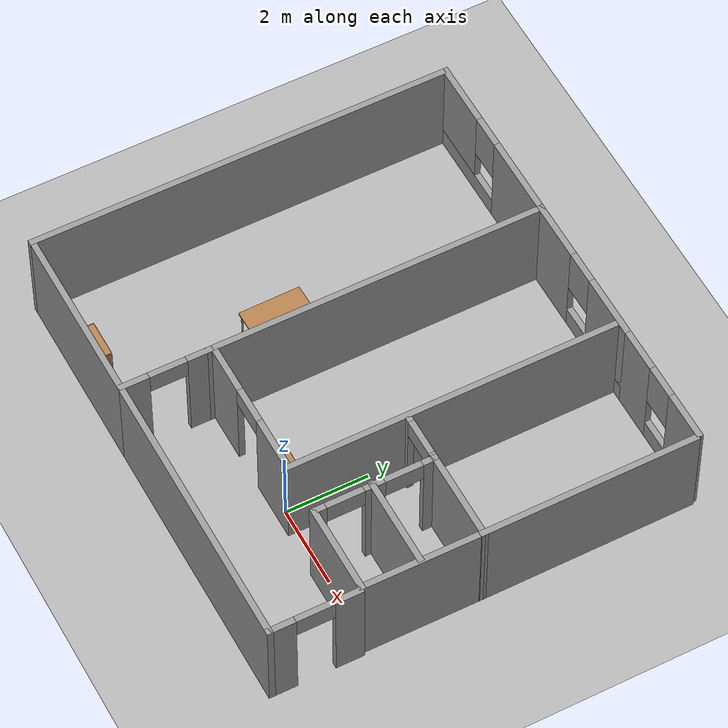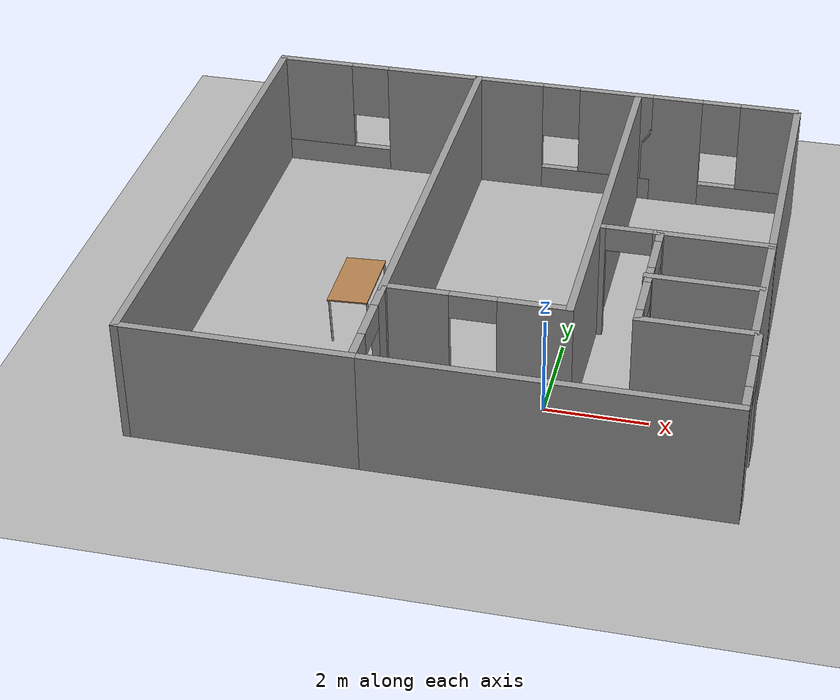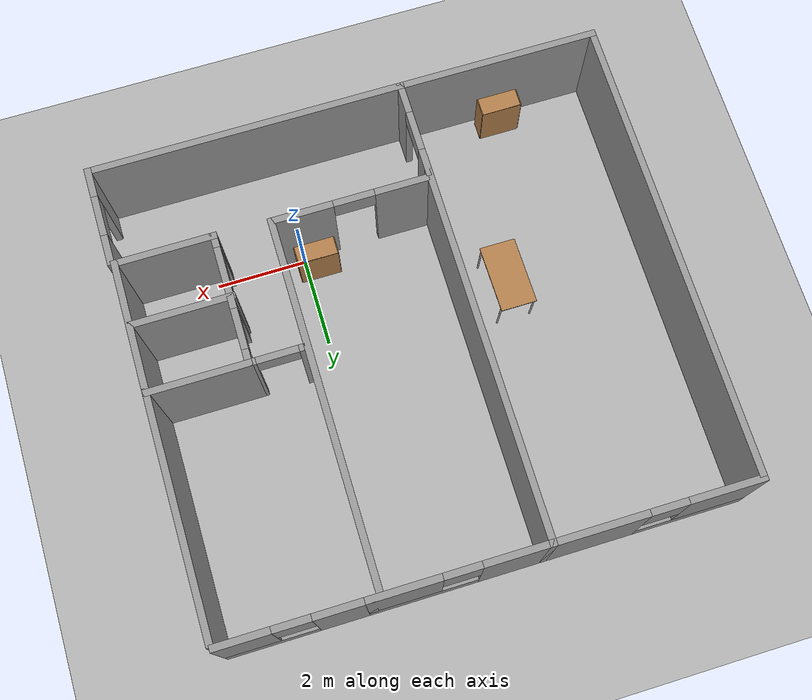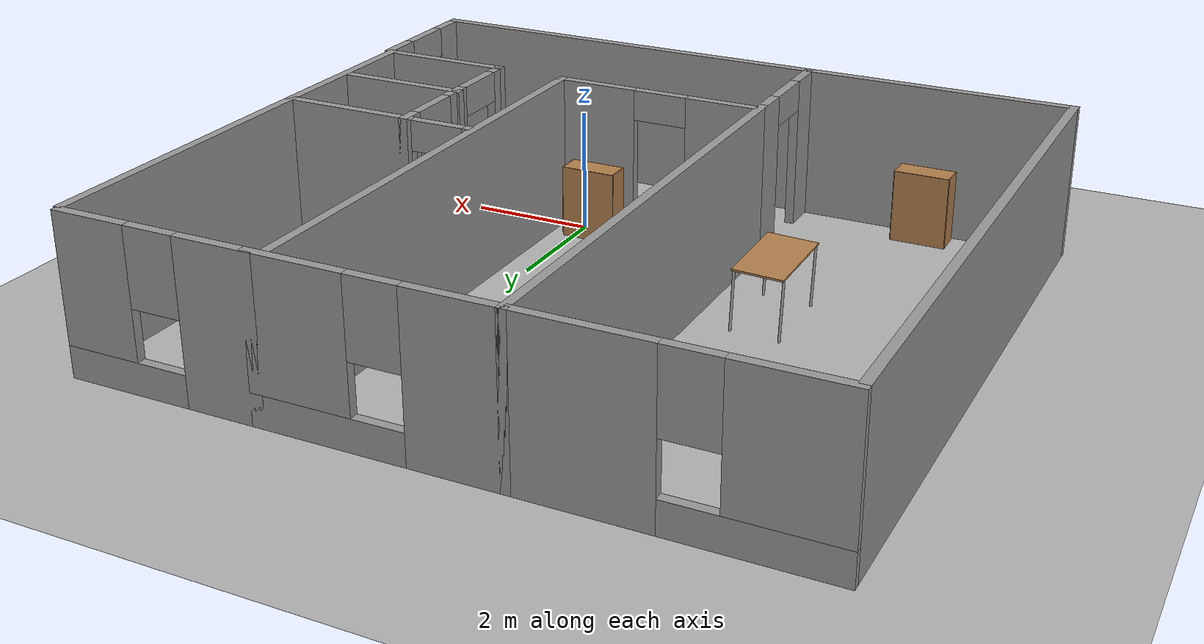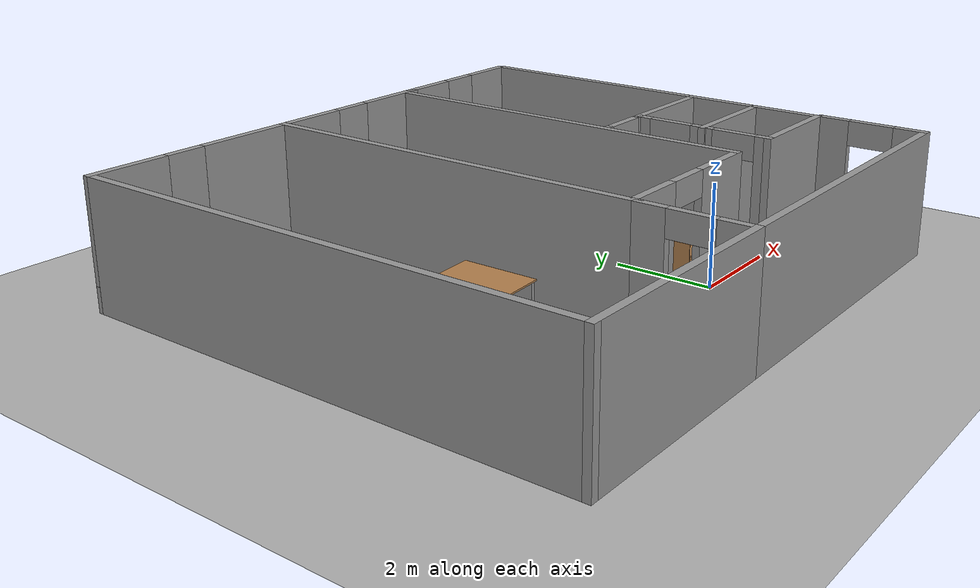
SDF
<sdf version="1.9">
 <world name="default">
  <gravity>0 0 -9.8</gravity>
  <magnetic_field>6e-06 2.3e-05 -4.2e-05</magnetic_field>
  <atmosphere type="adiabatic"/>
  <physics type="ode">
   <max_step_size>0.001</max_step_size>
   <real_time_factor>1</real_time_factor>
   <real_time_update_rate>1000</real_time_update_rate>
  </physics>
  <scene><ambient>0.4 0.4 0.4 1</ambient><background>0.7 0.7 0.7 1</background><shadows>true</shadows></scene>
  <model name="flatC">
   <pose>-1.73 2.75 0 0 -0 0</pose>
   <link name="Wall_0">
    <pose>-1.25 -4.05 0 0 -0 1.5708</pose>
    <visual name="Wall_0_Visual_0">
     <pose>-0.761983 0 1.25 0 -0 0</pose>
     <geometry><box><size>0.726033 0.15 2.5</size></box></geometry>
     <material>
      <script><uri>file://media/materials/scripts/gazebo.material</uri><name>Gazebo/Grey</name></script>
      <ambient>1 1 1 1</ambient>
     </material>
     <meta><layer>0</layer></meta>
    </visual>
    <collision name="Wall_0_Collision_0">
     <geometry><box><size>0.726033 0.15 2.5</size></box></geometry>
     <pose>-0.761983 0 1.25 0 -0 0</pose>
    </collision>
    <visual name="Wall_0_Visual_1">
     <pose>0.813017 0 1.25 0 -0 0</pose>
     <geometry><box><size>0.623967 0.15 2.5</size></box></geometry>
     <material>
      <script><uri>file://media/materials/scripts/gazebo.material</uri><name>Gazebo/Grey</name></script>
      <ambient>1 1 1 1</ambient>
     </material>
     <meta><layer>0</layer></meta>
    </visual>
    <collision name="Wall_0_Collision_1">
     <geometry><box><size>0.623967 0.15 2.5</size></box></geometry>
     <pose>0.813017 0 1.25 0 -0 0</pose>
    </collision>
    <visual name="Wall_0_Visual_2">
     <pose>0.051033 0 2.25 0 -0 0</pose>
     <geometry><box><size>0.9 0.15 0.5</size></box></geometry>
     <material>
      <script><uri>file://media/materials/scripts/gazebo.material</uri><name>Gazebo/Grey</name></script>
      <ambient>1 1 1 1</ambient>
     </material>
     <meta><layer>0</layer></meta>
    </visual>
    <collision name="Wall_0_Collision_2">
     <geometry><box><size>0.9 0.15 0.5</size></box></geometry>
     <pose>0.051033 0 2.25 0 -0 0</pose>
    </collision>
    <inertial>
     <mass>1</mass>
     <inertia><ixx>1</ixx><ixy>0</ixy><ixz>0</ixz><iyy>1</iyy><iyz>0</iyz><izz>1</izz></inertia>
    </inertial>
   </link>
   <link name="Wall_11">
    <collision name="Wall_11_Collision">
     <geometry><box><size>2.25 0.15 2.5</size></box></geometry>
     <pose>0 0 1.25 0 -0 0</pose>
    </collision>
    <visual name="Wall_11_Visual">
     <pose>0 0 1.25 0 -0 0</pose>
     <geometry><box><size>2.25 0.15 2.5</size></box></geometry>
     <material>
      <script><uri>file://media/materials/scripts/gazebo.material</uri><name>Gazebo/Grey</name></script>
      <ambient>1 1 1 1</ambient>
     </material>
     <meta><layer>0</layer></meta>
    </visual>
    <pose>4.45076 -1.55036 0 0 -0 0</pose>
    <inertial>
     <mass>1</mass>
     <inertia><ixx>1</ixx><ixy>0</ixy><ixz>0</ixz><iyy>1</iyy><iyz>0</iyz><izz>1</izz></inertia>
    </inertial>
   </link>
   <link name="Wall_14">
    <collision name="Wall_14_Collision">
     <geometry><box><size>8 0.15 2.5</size></box></geometry>
     <pose>0 0 1.25 0 -0 0</pose>
    </collision>
    <visual name="Wall_14_Visual">
     <pose>0 0 1.25 0 -0 0</pose>
     <geometry><box><size>8 0.15 2.5</size></box></geometry>
     <material>
      <script><uri>file://media/materials/scripts/gazebo.material</uri><name>Gazebo/Grey</name></script>
      <ambient>1 1 1 1</ambient>
     </material>
     <meta><layer>0</layer></meta>
    </visual>
    <pose>2.21143 1.02791 0 0 -0 1.5708</pose>
    <inertial>
     <mass>1</mass>
     <inertia><ixx>1</ixx><ixy>0</ixy><ixz>0</ixz><iyy>1</iyy><iyz>0</iyz><izz>1</izz></inertia>
    </inertial>
   </link>
   <link name="Wall_16">
    <collision name="Wall_16_Collision">
     <geometry><box><size>8.25 0.15 2.5</size></box></geometry>
     <pose>0 0 1.25 0 -0 0</pose>
    </collision>
    <visual name="Wall_16_Visual">
     <pose>0 0 1.25 0 -0 0</pose>
     <geometry><box><size>8.25 0.15 2.5</size></box></geometry>
     <material>
      <script><uri>file://media/materials/scripts/gazebo.material</uri><name>Gazebo/Grey</name></script>
      <ambient>1 1 1 1</ambient>
     </material>
     <meta><layer>0</layer></meta>
    </visual>
    <pose>-1.25 1.05 0 0 -0 1.5708</pose>
    <inertial>
     <mass>1</mass>
     <inertia><ixx>1</ixx><ixy>0</ixy><ixz>0</ixz><iyy>1</iyy><iyz>0</iyz><izz>1</izz></inertia>
    </inertial>
   </link>
   <link name="Wall_18">
    <pose>0.602471 5.1 0 0 -0 0</pose>
    <visual name="Wall_18_Visual_0">
     <pose>-1.18129 0 1.25 0 -0 0</pose>
     <geometry><box><size>1.49236 0.15 2.5</size></box></geometry>
     <material>
      <script><uri>file://media/materials/scripts/gazebo.material</uri><name>Gazebo/Grey</name></script>
      <ambient>1 1 1 1</ambient>
     </material>
     <meta><layer>0</layer></meta>
    </visual>
    <collision name="Wall_18_Collision_0">
     <geometry><box><size>1.49236 0.15 2.5</size></box></geometry>
     <pose>-1.18129 0 1.25 0 -0 0</pose>
    </collision>
    <visual name="Wall_18_Visual_1">
     <pose>0.746183 0 0.25 0 -0 0</pose>
     <geometry><box><size>2.36258 0.15 0.5</size></box></geometry>
     <material>
      <script><uri>file://media/materials/scripts/gazebo.material</uri><name>Gazebo/Grey</name></script>
      <ambient>1 1 1 1</ambient>
     </material>
     <meta><layer>0</layer></meta>
    </visual>
    <collision name="Wall_18_Collision_1">
     <geometry><box><size>2.36258 0.15 0.5</size></box></geometry>
     <pose>0.746183 0 0.25 0 -0 0</pose>
    </collision>
    <visual name="Wall_18_Visual_2">
     <pose>1.14618 0 1.5 0 -0 0</pose>
     <geometry><box><size>1.56258 0.15 2</size></box></geometry>
     <material>
      <script><uri>file://media/materials/scripts/gazebo.material</uri><name>Gazebo/Grey</name></script>
      <ambient>1 1 1 1</ambient>
     </material>
     <meta><layer>0</layer></meta>
    </visual>
    <collision name="Wall_18_Collision_2">
     <geometry><box><size>1.56258 0.15 2</size></box></geometry>
     <pose>1.14618 0 1.5 0 -0 0</pose>
    </collision>
    <visual name="Wall_18_Visual_3">
     <pose>-0.035105 0 1.9 0 -0 0</pose>
     <geometry><box><size>0.8 0.15 1.2</size></box></geometry>
     <material>
      <script><uri>file://media/materials/scripts/gazebo.material</uri><name>Gazebo/Grey</name></script>
      <ambient>1 1 1 1</ambient>
     </material>
     <meta><layer>0</layer></meta>
    </visual>
    <collision name="Wall_18_Collision_3">
     <geometry><box><size>0.8 0.15 1.2</size></box></geometry>
     <pose>-0.035105 0 1.9 0 -0 0</pose>
    </collision>
    <inertial>
     <mass>1</mass>
     <inertia><ixx>1</ixx><ixy>0</ixy><ixz>0</ixz><iyy>1</iyy><iyz>0</iyz><izz>1</izz></inertia>
    </inertial>
   </link>
   <link name="Wall_19">
    <pose>3.95247 5.1 0 0 -0 0</pose>
    <visual name="Wall_19_Visual_0">
     <pose>-0.999771 0 1.25 0 -0 0</pose>
     <geometry><box><size>1.25046 0.15 2.5</size></box></geometry>
     <material>
      <script><uri>file://media/materials/scripts/gazebo.material</uri><name>Gazebo/Grey</name></script>
      <ambient>1 1 1 1</ambient>
     </material>
     <meta><layer>0</layer></meta>
    </visual>
    <collision name="Wall_19_Collision_0">
     <geometry><box><size>1.25046 0.15 2.5</size></box></geometry>
     <pose>-0.999771 0 1.25 0 -0 0</pose>
    </collision>
    <visual name="Wall_19_Visual_1">
     <pose>0.625229 0 0.25 0 -0 0</pose>
     <geometry><box><size>1.99954 0.15 0.5</size></box></geometry>
     <material>
      <script><uri>file://media/materials/scripts/gazebo.material</uri><name>Gazebo/Grey</name></script>
      <ambient>1 1 1 1</ambient>
     </material>
     <meta><layer>0</layer></meta>
    </visual>
    <collision name="Wall_19_Collision_1">
     <geometry><box><size>1.99954 0.15 0.5</size></box></geometry>
     <pose>0.625229 0 0.25 0 -0 0</pose>
    </collision>
    <visual name="Wall_19_Visual_2">
     <pose>1.02523 0 1.5 0 -0 0</pose>
     <geometry><box><size>1.19954 0.15 2</size></box></geometry>
     <material>
      <script><uri>file://media/materials/scripts/gazebo.material</uri><name>Gazebo/Grey</name></script>
      <ambient>1 1 1 1</ambient>
     </material>
     <meta><layer>0</layer></meta>
    </visual>
    <collision name="Wall_19_Collision_2">
     <geometry><box><size>1.19954 0.15 2</size></box></geometry>
     <pose>1.02523 0 1.5 0 -0 0</pose>
    </collision>
    <visual name="Wall_19_Visual_3">
     <pose>0.025457 0 1.9 0 -0 0</pose>
     <geometry><box><size>0.8 0.15 1.2</size></box></geometry>
     <material>
      <script><uri>file://media/materials/scripts/gazebo.material</uri><name>Gazebo/Grey</name></script>
      <ambient>1 1 1 1</ambient>
     </material>
     <meta><layer>0</layer></meta>
    </visual>
    <collision name="Wall_19_Collision_3">
     <geometry><box><size>0.8 0.15 1.2</size></box></geometry>
     <pose>0.025457 0 1.9 0 -0 0</pose>
    </collision>
    <inertial>
     <mass>1</mass>
     <inertia><ixx>1</ixx><ixy>0</ixy><ixz>0</ixz><iyy>1</iyy><iyz>0</iyz><izz>1</izz></inertia>
    </inertial>
   </link>
   <link name="Wall_2">
    <pose>5.6 -4.05 0 0 0 -1.5708</pose>
    <visual name="Wall_2_Visual_0">
     <pose>-0.786782 0 1.25 0 -0 0</pose>
     <geometry><box><size>0.676437 0.15 2.5</size></box></geometry>
     <material>
      <script><uri>file://media/materials/scripts/gazebo.material</uri><name>Gazebo/Grey</name></script>
      <ambient>1 1 1 1</ambient>
     </material>
     <meta><layer>0</layer></meta>
    </visual>
    <collision name="Wall_2_Collision_0">
     <geometry><box><size>0.676437 0.15 2.5</size></box></geometry>
     <pose>-0.786782 0 1.25 0 -0 0</pose>
    </collision>
    <visual name="Wall_2_Visual_1">
     <pose>0.788218 0 1.25 0 -0 0</pose>
     <geometry><box><size>0.673563 0.15 2.5</size></box></geometry>
     <material>
      <script><uri>file://media/materials/scripts/gazebo.material</uri><name>Gazebo/Grey</name></script>
      <ambient>1 1 1 1</ambient>
     </material>
     <meta><layer>0</layer></meta>
    </visual>
    <collision name="Wall_2_Collision_1">
     <geometry><box><size>0.673563 0.15 2.5</size></box></geometry>
     <pose>0.788218 0 1.25 0 -0 0</pose>
    </collision>
    <visual name="Wall_2_Visual_2">
     <pose>0.001437 0 2.25 0 -0 0</pose>
     <geometry><box><size>0.9 0.15 0.5</size></box></geometry>
     <material>
      <script><uri>file://media/materials/scripts/gazebo.material</uri><name>Gazebo/Grey</name></script>
      <ambient>1 1 1 1</ambient>
     </material>
     <meta><layer>0</layer></meta>
    </visual>
    <collision name="Wall_2_Collision_2">
     <geometry><box><size>0.9 0.15 0.5</size></box></geometry>
     <pose>0.001437 0 2.25 0 -0 0</pose>
    </collision>
    <inertial>
     <mass>1</mass>
     <inertia><ixx>1</ixx><ixy>0</ixy><ixz>0</ixz><iyy>1</iyy><iyz>0</iyz><izz>1</izz></inertia>
    </inertial>
   </link>
   <link name="Wall_21">
    <collision name="Wall_21_Collision">
     <geometry><box><size>5.25 0.15 2.5</size></box></geometry>
     <pose>0 0 1.25 0 -0 0</pose>
    </collision>
    <visual name="Wall_21_Visual">
     <pose>0 0 1.25 0 -0 0</pose>
     <geometry><box><size>5.25 0.15 2.5</size></box></geometry>
     <material>
      <script><uri>file://media/materials/scripts/gazebo.material</uri><name>Gazebo/Grey</name></script>
      <ambient>1 1 1 1</ambient>
     </material>
     <meta><layer>0</layer></meta>
    </visual>
    <pose>5.55323 2.45044 0 0 -0 1.5708</pose>
    <inertial>
     <mass>1</mass>
     <inertia><ixx>1</ixx><ixy>0</ixy><ixz>0</ixz><iyy>1</iyy><iyz>0</iyz><izz>1</izz></inertia>
    </inertial>
   </link>
   <link name="Wall_23">
    <pose>2.88574 -0.082073 0 0 -0 3.14159</pose>
    <visual name="Wall_23_Visual_0">
     <pose>-0.515169 0 1.25 0 -0 0</pose>
     <geometry><box><size>0.219662 0.15 2.5</size></box></geometry>
     <material>
      <script><uri>file://media/materials/scripts/gazebo.material</uri><name>Gazebo/Grey</name></script>
      <ambient>1 1 1 1</ambient>
     </material>
     <meta><layer>0</layer></meta>
    </visual>
    <collision name="Wall_23_Collision_0">
     <geometry><box><size>0.219662 0.15 2.5</size></box></geometry>
     <pose>-0.515169 0 1.25 0 -0 0</pose>
    </collision>
    <visual name="Wall_23_Visual_1">
     <pose>0.559831 0 1.25 0 -0 0</pose>
     <geometry><box><size>0.130338 0.15 2.5</size></box></geometry>
     <material>
      <script><uri>file://media/materials/scripts/gazebo.material</uri><name>Gazebo/Grey</name></script>
      <ambient>1 1 1 1</ambient>
     </material>
     <meta><layer>0</layer></meta>
    </visual>
    <collision name="Wall_23_Collision_1">
     <geometry><box><size>0.130338 0.15 2.5</size></box></geometry>
     <pose>0.559831 0 1.25 0 -0 0</pose>
    </collision>
    <visual name="Wall_23_Visual_2">
     <pose>0.044662 0 2.25 0 -0 0</pose>
     <geometry><box><size>0.9 0.15 0.5</size></box></geometry>
     <material>
      <script><uri>file://media/materials/scripts/gazebo.material</uri><name>Gazebo/Grey</name></script>
      <ambient>1 1 1 1</ambient>
     </material>
     <meta><layer>0</layer></meta>
    </visual>
    <collision name="Wall_23_Collision_2">
     <geometry><box><size>0.9 0.15 0.5</size></box></geometry>
     <pose>0.044662 0 2.25 0 -0 0</pose>
    </collision>
    <inertial>
     <mass>1</mass>
     <inertia><ixx>1</ixx><ixy>0</ixy><ixz>0</ixz><iyy>1</iyy><iyz>0</iyz><izz>1</izz></inertia>
    </inertial>
   </link>
   <link name="Wall_25">
    <collision name="Wall_25_Collision">
     <geometry><box><size>4.5 0.15 2.5</size></box></geometry>
     <pose>0 0 1.25 0 -0 0</pose>
    </collision>
    <visual name="Wall_25_Visual">
     <pose>0 0 1.25 0 -0 0</pose>
     <geometry><box><size>4.5 0.15 2.5</size></box></geometry>
     <material>
      <script><uri>file://media/materials/scripts/gazebo.material</uri><name>Gazebo/Grey</name></script>
      <ambient>1 1 1 1</ambient>
     </material>
     <meta><layer>0</layer></meta>
    </visual>
    <pose>-3.425 -5.1 0 0 -0 3.14159</pose>
    <inertial>
     <mass>1</mass>
     <inertia><ixx>1</ixx><ixy>0</ixy><ixz>0</ixz><iyy>1</iyy><iyz>0</iyz><izz>1</izz></inertia>
    </inertial>
   </link>
   <link name="Wall_26">
    <collision name="Wall_26_Collision">
     <geometry><box><size>10.25 0.15 2.5</size></box></geometry>
     <pose>0 0 1.25 0 -0 0</pose>
    </collision>
    <visual name="Wall_26_Visual">
     <pose>0 0 1.25 0 -0 0</pose>
     <geometry><box><size>10.25 0.15 2.5</size></box></geometry>
     <material>
      <script><uri>file://media/materials/scripts/gazebo.material</uri><name>Gazebo/Grey</name></script>
      <ambient>1 1 1 1</ambient>
     </material>
     <meta><layer>0</layer></meta>
    </visual>
    <pose>-5.6 -0.05 0 0 -0 1.5708</pose>
    <inertial>
     <mass>1</mass>
     <inertia><ixx>1</ixx><ixy>0</ixy><ixz>0</ixz><iyy>1</iyy><iyz>0</iyz><izz>1</izz></inertia>
    </inertial>
   </link>
   <link name="Wall_28">
    <pose>-3.425 5.1 0 0 -0 3.14159</pose>
    <visual name="Wall_28_Visual_0">
     <pose>-1.21363 0 1.25 0 -0 0</pose>
     <geometry><box><size>2.07274 0.15 2.5</size></box></geometry>
     <material>
      <script><uri>file://media/materials/scripts/gazebo.material</uri><name>Gazebo/Grey</name></script>
      <ambient>1 1 1 1</ambient>
     </material>
     <meta><layer>0</layer></meta>
    </visual>
    <collision name="Wall_28_Collision_0">
     <geometry><box><size>2.07274 0.15 2.5</size></box></geometry>
     <pose>-1.21363 0 1.25 0 -0 0</pose>
    </collision>
    <visual name="Wall_28_Visual_1">
     <pose>1.03637 0 0.25 0 -0 0</pose>
     <geometry><box><size>2.42726 0.15 0.5</size></box></geometry>
     <material>
      <script><uri>file://media/materials/scripts/gazebo.material</uri><name>Gazebo/Grey</name></script>
      <ambient>1 1 1 1</ambient>
     </material>
     <meta><layer>0</layer></meta>
    </visual>
    <collision name="Wall_28_Collision_1">
     <geometry><box><size>2.42726 0.15 0.5</size></box></geometry>
     <pose>1.03637 0 0.25 0 -0 0</pose>
    </collision>
    <visual name="Wall_28_Visual_2">
     <pose>1.43637 0 1.5 0 -0 0</pose>
     <geometry><box><size>1.62726 0.15 2</size></box></geometry>
     <material>
      <script><uri>file://media/materials/scripts/gazebo.material</uri><name>Gazebo/Grey</name></script>
      <ambient>1 1 1 1</ambient>
     </material>
     <meta><layer>0</layer></meta>
    </visual>
    <collision name="Wall_28_Collision_2">
     <geometry><box><size>1.62726 0.15 2</size></box></geometry>
     <pose>1.43637 0 1.5 0 -0 0</pose>
    </collision>
    <visual name="Wall_28_Visual_3">
     <pose>0.22274 0 1.9 0 -0 0</pose>
     <geometry><box><size>0.8 0.15 1.2</size></box></geometry>
     <material>
      <script><uri>file://media/materials/scripts/gazebo.material</uri><name>Gazebo/Grey</name></script>
      <ambient>1 1 1 1</ambient>
     </material>
     <meta><layer>0</layer></meta>
    </visual>
    <collision name="Wall_28_Collision_3">
     <geometry><box><size>0.8 0.15 1.2</size></box></geometry>
     <pose>0.22274 0 1.9 0 -0 0</pose>
    </collision>
    <inertial>
     <mass>1</mass>
     <inertia><ixx>1</ixx><ixy>0</ixy><ixz>0</ixz><iyy>1</iyy><iyz>0</iyz><izz>1</izz></inertia>
    </inertial>
   </link>
   <link name="Wall_3">
    <collision name="Wall_3_Collision">
     <geometry><box><size>7 0.15 2.5</size></box></geometry>
     <pose>0 0 1.25 0 -0 0</pose>
    </collision>
    <visual name="Wall_3_Visual">
     <pose>0 0 1.25 0 -0 0</pose>
     <geometry><box><size>7 0.15 2.5</size></box></geometry>
     <material>
      <script><uri>file://media/materials/scripts/gazebo.material</uri><name>Gazebo/Grey</name></script>
      <ambient>1 1 1 1</ambient>
     </material>
     <meta><layer>0</layer></meta>
    </visual>
    <pose>2.175 -5.1 0 0 -0 3.14159</pose>
    <inertial>
     <mass>1</mass>
     <inertia><ixx>1</ixx><ixy>0</ixy><ixz>0</ixz><iyy>1</iyy><iyz>0</iyz><izz>1</izz></inertia>
    </inertial>
   </link>
   <link name="Wall_30">
    <pose>0.536431 -2.89709 0 0 -0 3.14159</pose>
    <visual name="Wall_30_Visual_0">
     <pose>-1.04551 0 1.25 0 -0 0</pose>
     <geometry><box><size>1.40899 0.15 2.5</size></box></geometry>
     <material>
      <script><uri>file://media/materials/scripts/gazebo.material</uri><name>Gazebo/Grey</name></script>
      <ambient>1 1 1 1</ambient>
     </material>
     <meta><layer>0</layer></meta>
    </visual>
    <collision name="Wall_30_Collision_0">
     <geometry><box><size>1.40899 0.15 2.5</size></box></geometry>
     <pose>-1.04551 0 1.25 0 -0 0</pose>
    </collision>
    <visual name="Wall_30_Visual_1">
     <pose>1.15449 0 1.25 0 -0 0</pose>
     <geometry><box><size>1.19101 0.15 2.5</size></box></geometry>
     <material>
      <script><uri>file://media/materials/scripts/gazebo.material</uri><name>Gazebo/Grey</name></script>
      <ambient>1 1 1 1</ambient>
     </material>
     <meta><layer>0</layer></meta>
    </visual>
    <collision name="Wall_30_Collision_1">
     <geometry><box><size>1.19101 0.15 2.5</size></box></geometry>
     <pose>1.15449 0 1.25 0 -0 0</pose>
    </collision>
    <visual name="Wall_30_Visual_2">
     <pose>0.108986 0 2.25 0 -0 0</pose>
     <geometry><box><size>0.9 0.15 0.5</size></box></geometry>
     <material>
      <script><uri>file://media/materials/scripts/gazebo.material</uri><name>Gazebo/Grey</name></script>
      <ambient>1 1 1 1</ambient>
     </material>
     <meta><layer>0</layer></meta>
    </visual>
    <collision name="Wall_30_Collision_2">
     <geometry><box><size>0.9 0.15 0.5</size></box></geometry>
     <pose>0.108986 0 2.25 0 -0 0</pose>
    </collision>
    <inertial>
     <mass>1</mass>
     <inertia><ixx>1</ixx><ixy>0</ixy><ixz>0</ixz><iyy>1</iyy><iyz>0</iyz><izz>1</izz></inertia>
    </inertial>
   </link>
   <link name="Wall_32">
    <collision name="Wall_32_Collision">
     <geometry><box><size>2.25 0.15 2.5</size></box></geometry>
     <pose>0 0 1.25 0 -0 0</pose>
    </collision>
    <visual name="Wall_32_Visual">
     <pose>0 0 1.25 0 -0 0</pose>
     <geometry><box><size>2.25 0.15 2.5</size></box></geometry>
     <material>
      <script><uri>file://media/materials/scripts/gazebo.material</uri><name>Gazebo/Grey</name></script>
      <ambient>1 1 1 1</ambient>
     </material>
     <meta><layer>0</layer></meta>
    </visual>
    <pose>4.48574 -2.93207 0 0 -0 0</pose>
    <inertial>
     <mass>1</mass>
     <inertia><ixx>1</ixx><ixy>0</ixy><ixz>0</ixz><iyy>1</iyy><iyz>0</iyz><izz>1</izz></inertia>
    </inertial>
   </link>
   <link name="Wall_5">
    <pose>3.43574 -1.50707 0 0 -0 1.5708</pose>
    <visual name="Wall_5_Visual_0">
     <pose>-1.32895 0 1.25 0 -0 0</pose>
     <geometry><box><size>0.342093 0.15 2.5</size></box></geometry>
     <material>
      <script><uri>file://media/materials/scripts/gazebo.material</uri><name>Gazebo/Grey</name></script>
      <ambient>1 1 1 1</ambient>
     </material>
     <meta><layer>0</layer></meta>
    </visual>
    <collision name="Wall_5_Collision_0">
     <geometry><box><size>0.342093 0.15 2.5</size></box></geometry>
     <pose>-1.32895 0 1.25 0 -0 0</pose>
    </collision>
    <visual name="Wall_5_Visual_1">
     <pose>-0.01705 0 1.25 0 -0 0</pose>
     <geometry><box><size>0.481715 0.15 2.5</size></box></geometry>
     <material>
      <script><uri>file://media/materials/scripts/gazebo.material</uri><name>Gazebo/Grey</name></script>
      <ambient>1 1 1 1</ambient>
     </material>
     <meta><layer>0</layer></meta>
    </visual>
    <collision name="Wall_5_Collision_1">
     <geometry><box><size>0.481715 0.15 2.5</size></box></geometry>
     <pose>-0.01705 0 1.25 0 -0 0</pose>
    </collision>
    <visual name="Wall_5_Visual_2">
     <pose>1.3119 0 1.25 0 -0 0</pose>
     <geometry><box><size>0.376192 0.15 2.5</size></box></geometry>
     <material>
      <script><uri>file://media/materials/scripts/gazebo.material</uri><name>Gazebo/Grey</name></script>
      <ambient>1 1 1 1</ambient>
     </material>
     <meta><layer>0</layer></meta>
    </visual>
    <collision name="Wall_5_Collision_2">
     <geometry><box><size>0.376192 0.15 2.5</size></box></geometry>
     <pose>1.3119 0 1.25 0 -0 0</pose>
    </collision>
    <visual name="Wall_5_Visual_3">
     <pose>-0.707907 0 2.25 0 -0 0</pose>
     <geometry><box><size>0.9 0.15 0.5</size></box></geometry>
     <material>
      <script><uri>file://media/materials/scripts/gazebo.material</uri><name>Gazebo/Grey</name></script>
      <ambient>1 1 1 1</ambient>
     </material>
     <meta><layer>0</layer></meta>
    </visual>
    <collision name="Wall_5_Collision_3">
     <geometry><box><size>0.9 0.15 0.5</size></box></geometry>
     <pose>-0.707907 0 2.25 0 -0 0</pose>
    </collision>
    <visual name="Wall_5_Visual_4">
     <pose>0.673808 0 2.25 0 -0 0</pose>
     <geometry><box><size>0.9 0.15 0.5</size></box></geometry>
     <material>
      <script><uri>file://media/materials/scripts/gazebo.material</uri><name>Gazebo/Grey</name></script>
      <ambient>1 1 1 1</ambient>
     </material>
     <meta><layer>0</layer></meta>
    </visual>
    <collision name="Wall_5_Collision_4">
     <geometry><box><size>0.9 0.15 0.5</size></box></geometry>
     <pose>0.673808 0 2.25 0 -0 0</pose>
    </collision>
    <inertial>
     <mass>1</mass>
     <inertia><ixx>1</ixx><ixy>0</ixy><ixz>0</ixz><iyy>1</iyy><iyz>0</iyz><izz>1</izz></inertia>
    </inertial>
   </link>
   <link name="Wall_6">
    <collision name="Wall_6_Collision">
     <geometry><box><size>2.26756 0.15 2.5</size></box></geometry>
     <pose>0 0 1.25 0 -0 0</pose>
    </collision>
    <visual name="Wall_6_Visual">
     <pose>0 0 1.25 0 -0 0</pose>
     <geometry><box><size>2.26756 0.15 2.5</size></box></geometry>
     <material>
      <script><uri>file://media/materials/scripts/gazebo.material</uri><name>Gazebo/Grey</name></script>
      <ambient>1 1 1 1</ambient>
     </material>
     <meta><layer>0</layer></meta>
    </visual>
    <pose>4.49448 -0.082073 0 0 -0 0</pose>
    <inertial>
     <mass>1</mass>
     <inertia><ixx>1</ixx><ixy>0</ixy><ixz>0</ixz><iyy>1</iyy><iyz>0</iyz><izz>1</izz></inertia>
    </inertial>
   </link>
   <link name="Wall_8">
    <collision name="Wall_8_Collision">
     <geometry><box><size>3.00005 0.15 2.5</size></box></geometry>
     <pose>0 0 1.25 0 -0 0</pose>
    </collision>
    <visual name="Wall_8_Visual">
     <pose>0 0 1.25 0 -0 0</pose>
     <geometry><box><size>3.00005 0.15 2.5</size></box></geometry>
     <material>
      <script><uri>file://media/materials/scripts/gazebo.material</uri><name>Gazebo/Grey</name></script>
      <ambient>1 1 1 1</ambient>
     </material>
     <meta><layer>0</layer></meta>
    </visual>
    <pose>5.54448 -1.50707 0 0 0 -1.57693</pose>
    <inertial>
     <mass>1</mass>
     <inertia><ixx>1</ixx><ixy>0</ixy><ixz>0</ixz><iyy>1</iyy><iyz>0</iyz><izz>1</izz></inertia>
    </inertial>
   </link>
   <static>true</static>
  </model>
  <model name="Table">
   <static>true</static>
   <link name="link">
    <collision name="surface">
     <pose>0 0 1.0 0 0 0</pose>
     <geometry><box><size>1.5 0.8 0.03</size></box></geometry>
     <surface><friction><ode><mu>0.59999999999999998</mu><mu2>0.59999999999999998</mu2></ode></friction></surface>
    </collision>
    <visual name="visual1">
     <pose>0 0 1.0 0 0 0</pose>
     <geometry><box><size>1.5 0.8 0.03</size></box></geometry>
     <material>
      <diffuse>1 1 1 1</diffuse>
      <script><uri>file://media/materials/scripts/gazebo.material</uri><name>Gazebo/Wood</name></script>
      <pbr>
       <metal>
        <albedo_map>https://fuel.gazebosim.org/1.0/openrobotics/models/table/4/files/Table_Diffuse.jpg</albedo_map>
       </metal>
      </pbr>
     </material>
    </visual>
    <collision name="front_left_leg">
     <pose>0.68 0.38 0.5 0 0 0</pose>
     <geometry><cylinder><radius>0.02</radius><length>1</length></cylinder></geometry>
    </collision>
    <visual name="front_left_leg">
     <pose>0.68 0.38 0.5 0 0 0</pose>
     <geometry><cylinder><radius>0.02</radius><length>1</length></cylinder></geometry>
     <material>
      <diffuse>0.5 0.5 0.5 1</diffuse>
      <script><uri>file://media/materials/scripts/gazebo.material</uri><name>Gazebo/Grey</name></script>
     </material>
    </visual>
    <collision name="front_right_leg">
     <pose>0.68 -0.38 0.5 0 0 0</pose>
     <geometry><cylinder><radius>0.02</radius><length>1</length></cylinder></geometry>
    </collision>
    <visual name="front_right_leg">
     <pose>0.68 -0.38 0.5 0 0 0</pose>
     <geometry><cylinder><radius>0.02</radius><length>1</length></cylinder></geometry>
     <material>
      <diffuse>0.5 0.5 0.5 1</diffuse>
      <script><uri>file://media/materials/scripts/gazebo.material</uri><name>Gazebo/Grey</name></script>
     </material>
    </visual>
    <collision name="back_right_leg">
     <pose>-0.68 -0.38 0.5 0 0 0</pose>
     <geometry><cylinder><radius>0.02</radius><length>1</length></cylinder></geometry>
    </collision>
    <visual name="back_right_leg">
     <pose>-0.68 -0.38 0.5 0 0 0</pose>
     <geometry><cylinder><radius>0.02</radius><length>1</length></cylinder></geometry>
     <material>
      <diffuse>0.5 0.5 0.5 1</diffuse>
      <script><uri>file://media/materials/scripts/gazebo.material</uri><name>Gazebo/Grey</name></script>
     </material>
    </visual>
    <collision name="back_left_leg">
     <pose>-0.68 0.38 0.5 0 0 0</pose>
     <geometry><cylinder><radius>0.02</radius><length>1</length></cylinder></geometry>
    </collision>
    <visual name="back_left_leg">
     <pose>-0.68 0.38 0.5 0 0 0</pose>
     <geometry><cylinder><radius>0.02</radius><length>1</length></cylinder></geometry>
     <material>
      <diffuse>0.5 0.5 0.5 1</diffuse>
      <script><uri>file://media/materials/scripts/gazebo.material</uri><name>Gazebo/Grey</name></script>
     </material>
    </visual>
    <inertial>
     <mass>1</mass>
     <inertia><ixx>1</ixx><ixy>0</ixy><ixz>0</ixz><iyy>1</iyy><iyz>0</iyz><izz>1</izz></inertia>
    </inertial>
   </link>
   <pose>-4.0752 1.93636 0.027556 0.036401 -0.000428 -1.55904</pose>
  </model>
  <model name="Bookshelf">
   <static>true</static>
   <link name="link">
    <inertial>
     <mass>1</mass>
     <inertia><ixx>1</ixx><ixy>0</ixy><ixz>0</ixz><iyy>1</iyy><iyz>0</iyz><izz>1</izz></inertia>
    </inertial>
    <collision name="back">
     <pose>0 0.005 0.6 0 0 0</pose>
     <geometry><box><size>0.9 0.01 1.2</size></box></geometry>
    </collision>
    <visual name="visual1">
     <pose>0 0.005 0.6 0 0 0</pose>
     <geometry><box><size>0.9 0.01 1.2</size></box></geometry>
     <material>
      <diffuse>1 1 1 1</diffuse>
      <script><uri>file://media/materials/scripts/gazebo.material</uri><name>Gazebo/Wood</name></script>
      <pbr>
       <metal>
        <albedo_map>https://fuel.gazebosim.org/1.0/openrobotics/models/bookshelf/4/files/bookshelf_diffuse.jpg</albedo_map>
       </metal>
      </pbr>
     </material>
    </visual>
    <collision name="left_side">
     <pose>0.45 -0.195 0.6 0 0 0</pose>
     <geometry><box><size>0.02 0.4 1.2</size></box></geometry>
    </collision>
    <visual name="visual2">
     <pose>0.45 -0.195 0.6 0 0 0</pose>
     <geometry><box><size>0.02 0.4 1.2</size></box></geometry>
     <material>
      <diffuse>1 1 1 1</diffuse>
      <script><uri>file://media/materials/scripts/gazebo.material</uri><name>Gazebo/Wood</name></script>
      <pbr>
       <metal>
        <albedo_map>https://fuel.gazebosim.org/1.0/openrobotics/models/bookshelf/4/files/bookshelf_diffuse.jpg</albedo_map>
       </metal>
      </pbr>
     </material>
    </visual>
    <collision name="right_side">
     <pose>-0.45 -0.195 0.6 0 0 0</pose>
     <geometry><box><size>0.02 0.4 1.2</size></box></geometry>
    </collision>
    <visual name="visual3">
     <pose>-0.45 -0.195 0.6 0 0 0</pose>
     <geometry><box><size>0.02 0.4 1.2</size></box></geometry>
     <material>
      <diffuse>1 1 1 1</diffuse>
      <script><uri>file://media/materials/scripts/gazebo.material</uri><name>Gazebo/Wood</name></script>
      <pbr>
       <metal>
        <albedo_map>https://fuel.gazebosim.org/1.0/openrobotics/models/bookshelf/4/files/bookshelf_diffuse.jpg</albedo_map>
       </metal>
      </pbr>
     </material>
    </visual>
    <collision name="bottom">
     <pose>0 -0.195 0.03 0 0 0</pose>
     <geometry><box><size>0.88 0.4 0.06</size></box></geometry>
    </collision>
    <visual name="visual4">
     <pose>0 -0.195 0.03 0 0 0</pose>
     <geometry><box><size>0.88 0.4 0.06</size></box></geometry>
     <material>
      <diffuse>1 1 1 1</diffuse>
      <script><uri>file://media/materials/scripts/gazebo.material</uri><name>Gazebo/Wood</name></script>
      <pbr>
       <metal>
        <albedo_map>https://fuel.gazebosim.org/1.0/openrobotics/models/bookshelf/4/files/bookshelf_diffuse.jpg</albedo_map>
       </metal>
      </pbr>
     </material>
    </visual>
    <collision name="top">
     <pose>0 -0.195 1.19 0 0 0</pose>
     <geometry><box><size>0.88 0.4 0.02</size></box></geometry>
    </collision>
    <visual name="visual5">
     <pose>0 -0.195 1.19 0 0 0</pose>
     <geometry><box><size>0.88 0.4 0.02</size></box></geometry>
     <material>
      <diffuse>1 1 1 1</diffuse>
      <script><uri>file://media/materials/scripts/gazebo.material</uri><name>Gazebo/Wood</name></script>
      <pbr>
       <metal>
        <albedo_map>https://fuel.gazebosim.org/1.0/openrobotics/models/bookshelf/4/files/bookshelf_diffuse.jpg</albedo_map>
       </metal>
      </pbr>
     </material>
    </visual>
    <collision name="low_shelf">
     <pose>0 -0.195 0.43 0 0 0</pose>
     <geometry><box><size>0.88 0.4 0.02</size></box></geometry>
    </collision>
    <visual name="visual6">
     <pose>0 -0.195 0.43 0 0 0</pose>
     <geometry><box><size>0.88 0.4 0.02</size></box></geometry>
     <material>
      <diffuse>1 1 1 1</diffuse>
      <script><uri>file://media/materials/scripts/gazebo.material</uri><name>Gazebo/Wood</name></script>
      <pbr>
       <metal>
        <albedo_map>https://fuel.gazebosim.org/1.0/openrobotics/models/bookshelf/4/files/bookshelf_diffuse.jpg</albedo_map>
       </metal>
      </pbr>
     </material>
    </visual>
    <collision name="high_shelf">
     <pose>0 -0.195 0.8 0 0 0</pose>
     <geometry><box><size>0.88 0.4 0.02</size></box></geometry>
    </collision>
    <visual name="visual7">
     <pose>0 -0.195 0.8 0 0 0</pose>
     <geometry><box><size>0.88 0.4 0.02</size></box></geometry>
     <material>
      <diffuse>1 1 1 1</diffuse>
      <script><uri>file://media/materials/scripts/gazebo.material</uri><name>Gazebo/Wood</name></script>
      <pbr>
       <metal>
        <albedo_map>https://fuel.gazebosim.org/1.0/openrobotics/models/bookshelf/4/files/bookshelf_diffuse.jpg</albedo_map>
       </metal>
      </pbr>
     </material>
    </visual>
   </link>
   <pose>-0.274335 0.437346 0 0 -0 0</pose>
  </model>
  <model name="Bookshelf_0">
   <static>true</static>
   <link name="link">
    <inertial>
     <mass>1</mass>
     <inertia><ixx>1</ixx><ixy>0</ixy><ixz>0</ixz><iyy>1</iyy><iyz>0</iyz><izz>1</izz></inertia>
    </inertial>
    <collision name="back">
     <pose>0 0.005 0.6 0 0 0</pose>
     <geometry><box><size>0.9 0.01 1.2</size></box></geometry>
    </collision>
    <visual name="visual1">
     <pose>0 0.005 0.6 0 0 0</pose>
     <geometry><box><size>0.9 0.01 1.2</size></box></geometry>
     <material>
      <diffuse>1 1 1 1</diffuse>
      <script><uri>file://media/materials/scripts/gazebo.material</uri><name>Gazebo/Wood</name></script>
      <pbr>
       <metal>
        <albedo_map>https://fuel.gazebosim.org/1.0/openrobotics/models/bookshelf/4/files/bookshelf_diffuse.jpg</albedo_map>
       </metal>
      </pbr>
     </material>
    </visual>
    <collision name="left_side">
     <pose>0.45 -0.195 0.6 0 0 0</pose>
     <geometry><box><size>0.02 0.4 1.2</size></box></geometry>
    </collision>
    <visual name="visual2">
     <pose>0.45 -0.195 0.6 0 0 0</pose>
     <geometry><box><size>0.02 0.4 1.2</size></box></geometry>
     <material>
      <diffuse>1 1 1 1</diffuse>
      <script><uri>file://media/materials/scripts/gazebo.material</uri><name>Gazebo/Wood</name></script>
      <pbr>
       <metal>
        <albedo_map>https://fuel.gazebosim.org/1.0/openrobotics/models/bookshelf/4/files/bookshelf_diffuse.jpg</albedo_map>
       </metal>
      </pbr>
     </material>
    </visual>
    <collision name="right_side">
     <pose>-0.45 -0.195 0.6 0 0 0</pose>
     <geometry><box><size>0.02 0.4 1.2</size></box></geometry>
    </collision>
    <visual name="visual3">
     <pose>-0.45 -0.195 0.6 0 0 0</pose>
     <geometry><box><size>0.02 0.4 1.2</size></box></geometry>
     <material>
      <diffuse>1 1 1 1</diffuse>
      <script><uri>file://media/materials/scripts/gazebo.material</uri><name>Gazebo/Wood</name></script>
      <pbr>
       <metal>
        <albedo_map>https://fuel.gazebosim.org/1.0/openrobotics/models/bookshelf/4/files/bookshelf_diffuse.jpg</albedo_map>
       </metal>
      </pbr>
     </material>
    </visual>
    <collision name="bottom">
     <pose>0 -0.195 0.03 0 0 0</pose>
     <geometry><box><size>0.88 0.4 0.06</size></box></geometry>
    </collision>
    <visual name="visual4">
     <pose>0 -0.195 0.03 0 0 0</pose>
     <geometry><box><size>0.88 0.4 0.06</size></box></geometry>
     <material>
      <diffuse>1 1 1 1</diffuse>
      <script><uri>file://media/materials/scripts/gazebo.material</uri><name>Gazebo/Wood</name></script>
      <pbr>
       <metal>
        <albedo_map>https://fuel.gazebosim.org/1.0/openrobotics/models/bookshelf/4/files/bookshelf_diffuse.jpg</albedo_map>
       </metal>
      </pbr>
     </material>
    </visual>
    <collision name="top">
     <pose>0 -0.195 1.19 0 0 0</pose>
     <geometry><box><size>0.88 0.4 0.02</size></box></geometry>
    </collision>
    <visual name="visual5">
     <pose>0 -0.195 1.19 0 0 0</pose>
     <geometry><box><size>0.88 0.4 0.02</size></box></geometry>
     <material>
      <diffuse>1 1 1 1</diffuse>
      <script><uri>file://media/materials/scripts/gazebo.material</uri><name>Gazebo/Wood</name></script>
      <pbr>
       <metal>
        <albedo_map>https://fuel.gazebosim.org/1.0/openrobotics/models/bookshelf/4/files/bookshelf_diffuse.jpg</albedo_map>
       </metal>
      </pbr>
     </material>
    </visual>
    <collision name="low_shelf">
     <pose>0 -0.195 0.43 0 0 0</pose>
     <geometry><box><size>0.88 0.4 0.02</size></box></geometry>
    </collision>
    <visual name="visual6">
     <pose>0 -0.195 0.43 0 0 0</pose>
     <geometry><box><size>0.88 0.4 0.02</size></box></geometry>
     <material>
      <diffuse>1 1 1 1</diffuse>
      <script><uri>file://media/materials/scripts/gazebo.material</uri><name>Gazebo/Wood</name></script>
      <pbr>
       <metal>
        <albedo_map>https://fuel.gazebosim.org/1.0/openrobotics/models/bookshelf/4/files/bookshelf_diffuse.jpg</albedo_map>
       </metal>
      </pbr>
     </material>
    </visual>
    <collision name="high_shelf">
     <pose>0 -0.195 0.8 0 0 0</pose>
     <geometry><box><size>0.88 0.4 0.02</size></box></geometry>
    </collision>
    <visual name="visual7">
     <pose>0 -0.195 0.8 0 0 0</pose>
     <geometry><box><size>0.88 0.4 0.02</size></box></geometry>
     <material>
      <diffuse>1 1 1 1</diffuse>
      <script><uri>file://media/materials/scripts/gazebo.material</uri><name>Gazebo/Wood</name></script>
      <pbr>
       <metal>
        <albedo_map>https://fuel.gazebosim.org/1.0/openrobotics/models/bookshelf/4/files/bookshelf_diffuse.jpg</albedo_map>
       </metal>
      </pbr>
     </material>
    </visual>
   </link>
   <pose>-5.16997 -1.78233 0 0 -0 0</pose>
  </model>
  <model name="ground_plane">
   <static>true</static>
   <link name="link">
    <collision name="collision">
     <geometry><plane><normal>0 0 1</normal><size>100 100</size></plane></geometry>
     <surface><friction><ode><mu>100</mu><mu2>50</mu2></ode></friction></surface>
    </collision>
    <visual name="visual">
     <cast_shadows>false</cast_shadows>
     <geometry><plane><normal>0 0 1</normal><size>100 100</size></plane></geometry>
     <material>
      <ambient>0.3 0.3 0.3 1</ambient>
      <diffuse>0.7 0.7 0.7 1</diffuse>
      <specular>0.01 0.01 0.01 1</specular>
     </material>
    </visual>
    <inertial>
     <mass>1</mass>
     <inertia><ixx>1</ixx><ixy>0</ixy><ixz>0</ixz><iyy>1</iyy><iyz>0</iyz><izz>1</izz></inertia>
    </inertial>
   </link>
   <pose>7.11473 2.58195 0 0 -0 0</pose>
  </model>
  <light name="sun" type="directional">
   <pose>3.96525 3.33653 10 0 -0 0</pose>
   <intensity>1</intensity>
   <direction>-0.5 0.1 -0.9</direction>
   <diffuse>0.8 0.8 0.8 1</diffuse>
   <specular>0.2 0.2 0.2 1</specular>
   <attenuation>
    <range>1000</range>
    <linear>0.01</linear>
    <constant>0.90000000000000002</constant>
    <quadratic>0.001</quadratic>
   </attenuation>
   <spot><inner_angle>0</inner_angle><outer_angle>0</outer_angle><falloff>0</falloff></spot>
  </light>
 </world>
</sdf>
